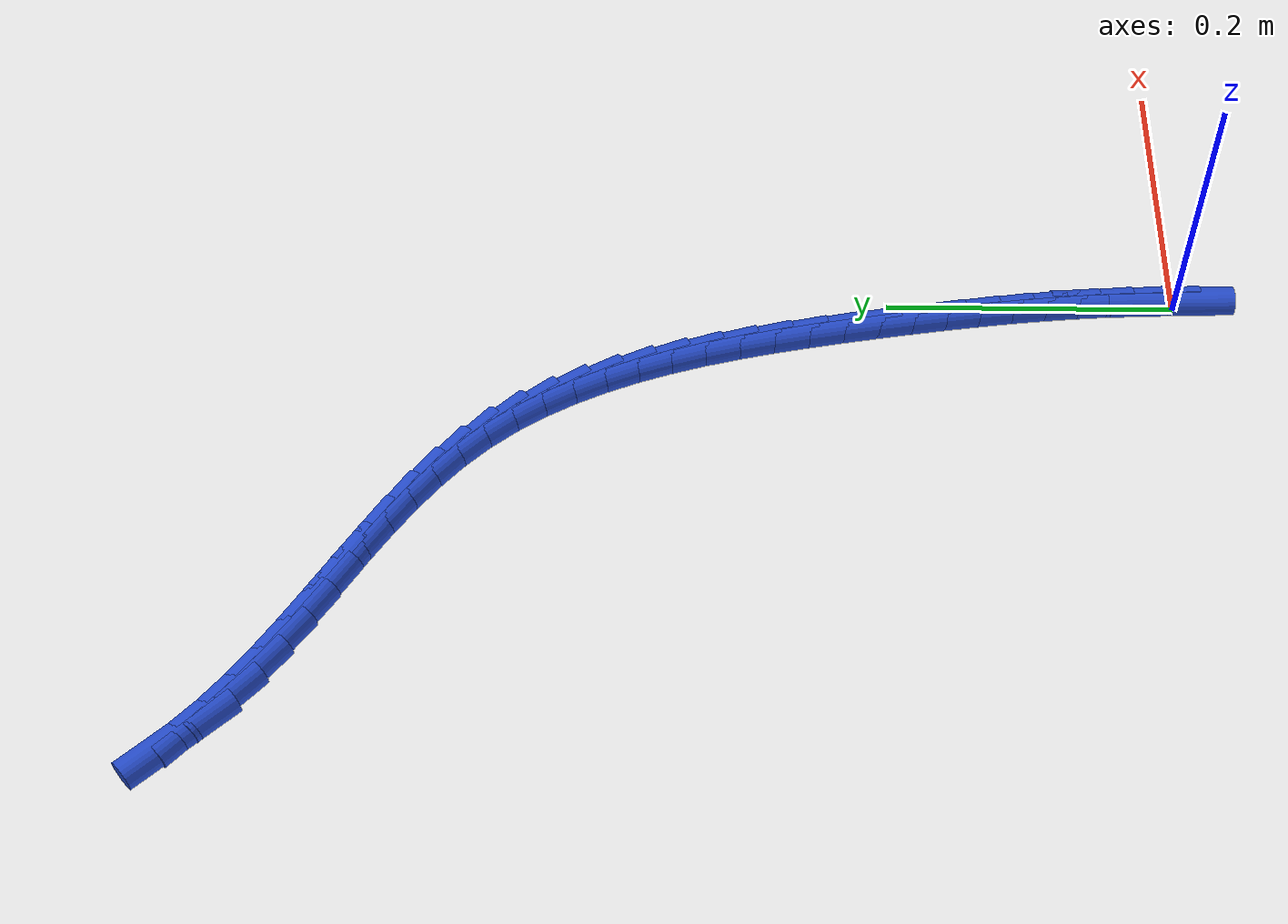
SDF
<sdf version="1.6">
 <world name="default">
  <model name="ground_plane">
   <static>1</static>
   <link name="link">
    <collision name="collision">
     <geometry><plane><normal>0 0 1</normal><size>100 100</size></plane></geometry>
     <surface><friction><ode><mu>100</mu><mu2>50</mu2></ode></friction></surface>
    </collision>
    <visual name="visual">
     <cast_shadows>0</cast_shadows>
     <geometry><plane><normal>0 0 1</normal><size>100 100</size></plane></geometry>
     <material>
      <script><uri>file://media/materials/scripts/gazebo.material</uri><name>Gazebo/WhiteGlow</name></script>
     </material>
    </visual>
   </link>
  </model>
  <model name="line">
   <link name="link_0">
    <pose>-9.974659986866641e-18 0.0 0.01 0 1.57 -1.5426376400969413</pose>
    <collision name="collision">
     <geometry><cylinder><radius>0.01</radius><length>0.08</length></cylinder></geometry>
    </collision>
    <visual name="visual">
     <material>
      <script><name>Gazebo/Blue</name><uri>file://media/materials/scripts/gazebo.material</uri></script>
     </material>
     <geometry><cylinder><radius>0.01</radius><length>0.08</length></cylinder></geometry>
    </visual>
   </link>
   <link name="link_1">
    <pose>-0.0006535011654072775 0.02320166563133421 0.01 0 1.57 -1.5184669543189968</pose>
    <collision name="collision">
     <geometry><cylinder><radius>0.01</radius><length>0.08</length></cylinder></geometry>
    </collision>
    <visual name="visual">
     <material>
      <script><name>Gazebo/Blue</name><uri>file://media/materials/scripts/gazebo.material</uri></script>
     </material>
     <geometry><cylinder><radius>0.01</radius><length>0.08</length></cylinder></geometry>
    </visual>
   </link>
   <link name="link_2">
    <pose>-0.0018649368852563999 0.046330735921835814 0.01 0 1.57 -1.4961589771857828</pose>
    <collision name="collision">
     <geometry><cylinder><radius>0.01</radius><length>0.08</length></cylinder></geometry>
    </collision>
    <visual name="visual">
     <material>
      <script><name>Gazebo/Blue</name><uri>file://media/materials/scripts/gazebo.material</uri></script>
     </material>
     <geometry><cylinder><radius>0.01</radius><length>0.08</length></cylinder></geometry>
    </visual>
   </link>
   <link name="link_3">
    <pose>-0.0035916415821143303 0.06942235395193948 0.01 0 1.57 -1.4758306153682874</pose>
    <collision name="collision">
     <geometry><cylinder><radius>0.01</radius><length>0.08</length></cylinder></geometry>
    </collision>
    <visual name="visual">
     <material>
      <script><name>Gazebo/Blue</name><uri>file://media/materials/scripts/gazebo.material</uri></script>
     </material>
     <geometry><cylinder><radius>0.01</radius><length>0.08</length></cylinder></geometry>
    </visual>
   </link>
   <link name="link_4">
    <pose>-0.005790949678548022 0.09251166280207991 0.01 0 1.57 -1.4575714925606467</pose>
    <collision name="collision">
     <geometry><cylinder><radius>0.01</radius><length>0.08</length></cylinder></geometry>
    </collision>
    <visual name="visual">
     <material>
      <script><name>Gazebo/Blue</name><uri>file://media/materials/scripts/gazebo.material</uri></script>
     </material>
     <geometry><cylinder><radius>0.01</radius><length>0.08</length></cylinder></geometry>
    </visual>
   </link>
   <link name="link_5">
    <pose>-0.008420195597124423 0.11563380555269182 0.01 0 1.57 -1.4414448840320986</pose>
    <collision name="collision">
     <geometry><cylinder><radius>0.01</radius><length>0.08</length></cylinder></geometry>
    </collision>
    <visual name="visual">
     <material>
      <script><name>Gazebo/Blue</name><uri>file://media/materials/scripts/gazebo.material</uri></script>
     </material>
     <geometry><cylinder><radius>0.01</radius><length>0.08</length></cylinder></geometry>
    </visual>
   </link>
   <link name="link_6">
    <pose>-0.011436713760410486 0.13882392528420975 0.01 0 1.57 -1.427489329861225</pose>
    <collision name="collision">
     <geometry><cylinder><radius>0.01</radius><length>0.08</length></cylinder></geometry>
    </collision>
    <visual name="visual">
     <material>
      <script><name>Gazebo/Blue</name><uri>file://media/materials/scripts/gazebo.material</uri></script>
     </material>
     <geometry><cylinder><radius>0.01</radius><length>0.08</length></cylinder></geometry>
    </visual>
   </link>
   <link name="link_7">
    <pose>-0.01479783859097316 0.16211716507706855 0.01 0 1.57 -1.4157206980959294</pose>
    <collision name="collision">
     <geometry><cylinder><radius>0.01</radius><length>0.08</length></cylinder></geometry>
    </collision>
    <visual name="visual">
     <material>
      <script><name>Gazebo/Blue</name><uri>file://media/materials/scripts/gazebo.material</uri></script>
     </material>
     <geometry><cylinder><radius>0.01</radius><length>0.08</length></cylinder></geometry>
    </visual>
   </link>
   <link name="link_8">
    <pose>-0.018460904511379397 0.18554866801170278 0.01 0 1.57 -1.4061344901895956</pose>
    <collision name="collision">
     <geometry><cylinder><radius>0.01</radius><length>0.08</length></cylinder></geometry>
    </collision>
    <visual name="visual">
     <material>
      <script><name>Gazebo/Blue</name><uri>file://media/materials/scripts/gazebo.material</uri></script>
     </material>
     <geometry><cylinder><radius>0.01</radius><length>0.08</length></cylinder></geometry>
    </visual>
   </link>
   <link name="link_9">
    <pose>-0.02238324594419616 0.20915357716854716 0.01 0 1.57 -1.3981448148507345</pose>
    <collision name="collision">
     <geometry><cylinder><radius>0.01</radius><length>0.08</length></cylinder></geometry>
    </collision>
    <visual name="visual">
     <material>
      <script><name>Gazebo/Blue</name><uri>file://media/materials/scripts/gazebo.material</uri></script>
     </material>
     <geometry><cylinder><radius>0.01</radius><length>0.08</length></cylinder></geometry>
    </visual>
   </link>
   <link name="link_10">
    <pose>-0.026533933366463994 0.23295506724168624 0.01 0 1.57 -1.3869090481068425</pose>
    <collision name="collision">
     <geometry><cylinder><radius>0.01</radius><length>0.08</length></cylinder></geometry>
    </collision>
    <visual name="visual">
     <material>
      <script><name>Gazebo/Blue</name><uri>file://media/materials/scripts/gazebo.material</uri></script>
     </material>
     <geometry><cylinder><radius>0.01</radius><length>0.08</length></cylinder></geometry>
    </visual>
   </link>
   <link name="link_11">
    <pose>-0.030982543184908742 0.2568738173378114 0.01 0 1.57 -1.3699339599801506</pose>
    <collision name="collision">
     <geometry><cylinder><radius>0.01</radius><length>0.08</length></cylinder></geometry>
    </collision>
    <visual name="visual">
     <material>
      <script><name>Gazebo/Blue</name><uri>file://media/materials/scripts/gazebo.material</uri></script>
     </material>
     <geometry><cylinder><radius>0.01</radius><length>0.08</length></cylinder></geometry>
    </visual>
   </link>
   <link name="link_12">
    <pose>-0.03584971413699516 0.28077843338147307 0.01 0 1.57 -1.3470366569464325</pose>
    <collision name="collision">
     <geometry><cylinder><radius>0.01</radius><length>0.08</length></cylinder></geometry>
    </collision>
    <visual name="visual">
     <material>
      <script><name>Gazebo/Blue</name><uri>file://media/materials/scripts/gazebo.material</uri></script>
     </material>
     <geometry><cylinder><radius>0.01</radius><length>0.08</length></cylinder></geometry>
    </visual>
   </link>
   <link name="link_13">
    <pose>-0.04125648687033959 0.3045371114306874 0.01 0 1.57 -1.3179298845713576</pose>
    <collision name="collision">
     <geometry><cylinder><radius>0.01</radius><length>0.08</length></cylinder></geometry>
    </collision>
    <visual name="visual">
     <material>
      <script><name>Gazebo/Blue</name><uri>file://media/materials/scripts/gazebo.material</uri></script>
     </material>
     <geometry><cylinder><radius>0.01</radius><length>0.08</length></cylinder></geometry>
    </visual>
   </link>
   <link name="link_14">
    <pose>-0.04732390203255834 0.3280180475434704 0.01 0 1.57 -1.282217757556199</pose>
    <collision name="collision">
     <geometry><cylinder><radius>0.01</radius><length>0.08</length></cylinder></geometry>
    </collision>
    <visual name="visual">
     <material>
      <script><name>Gazebo/Blue</name><uri>file://media/materials/scripts/gazebo.material</uri></script>
     </material>
     <geometry><cylinder><radius>0.01</radius><length>0.08</length></cylinder></geometry>
    </visual>
   </link>
   <link name="link_15">
    <pose>-0.05417300027126774 0.35108943777783846 0.01 0 1.57 -1.239417628663699</pose>
    <collision name="collision">
     <geometry><cylinder><radius>0.01</radius><length>0.08</length></cylinder></geometry>
    </collision>
    <visual name="visual">
     <material>
      <script><name>Gazebo/Blue</name><uri>file://media/materials/scripts/gazebo.material</uri></script>
     </material>
     <geometry><cylinder><radius>0.01</radius><length>0.08</length></cylinder></geometry>
    </visual>
   </link>
   <link name="link_16">
    <pose>-0.061924822234084145 0.3736194781918077 0.01 0 1.57 -1.188995689473306</pose>
    <collision name="collision">
     <geometry><cylinder><radius>0.01</radius><length>0.08</length></cylinder></geometry>
    </collision>
    <visual name="visual">
     <material>
      <script><name>Gazebo/Blue</name><uri>file://media/materials/scripts/gazebo.material</uri></script>
     </material>
     <geometry><cylinder><radius>0.01</radius><length>0.08</length></cylinder></geometry>
    </visual>
   </link>
   <link name="link_17">
    <pose>-0.07070040856862389 0.3954763648433943 0.01 0 1.57 -1.1304249307770082</pose>
    <collision name="collision">
     <geometry><cylinder><radius>0.01</radius><length>0.08</length></cylinder></geometry>
    </collision>
    <visual name="visual">
     <material>
      <script><name>Gazebo/Blue</name><uri>file://media/materials/scripts/gazebo.material</uri></script>
     </material>
     <geometry><cylinder><radius>0.01</radius><length>0.08</length></cylinder></geometry>
    </visual>
   </link>
   <link name="link_18">
    <pose>-0.08062079992250326 0.4165282937906145 0.01 0 1.57 -1.0632745719719394</pose>
    <collision name="collision">
     <geometry><cylinder><radius>0.01</radius><length>0.08</length></cylinder></geometry>
    </collision>
    <visual name="visual">
     <material>
      <script><name>Gazebo/Blue</name><uri>file://media/materials/scripts/gazebo.material</uri></script>
     </material>
     <geometry><cylinder><radius>0.01</radius><length>0.08</length></cylinder></geometry>
    </visual>
   </link>
   <link name="link_19">
    <pose>-0.0918070369433386 0.43664346109148444 0.01 0 1.57 -0.9873367878217699</pose>
    <collision name="collision">
     <geometry><cylinder><radius>0.01</radius><length>0.08</length></cylinder></geometry>
    </collision>
    <visual name="visual">
     <material>
      <script><name>Gazebo/Blue</name><uri>file://media/materials/scripts/gazebo.material</uri></script>
     </material>
     <geometry><cylinder><radius>0.01</radius><length>0.08</length></cylinder></geometry>
    </visual>
   </link>
   <link name="link_20">
    <pose>-0.1043801602787463 0.4556900628040203 0.01 0 1.57 -0.9027858988831038</pose>
    <collision name="collision">
     <geometry><cylinder><radius>0.01</radius><length>0.08</length></cylinder></geometry>
    </collision>
    <visual name="visual">
     <material>
      <script><name>Gazebo/Blue</name><uri>file://media/materials/scripts/gazebo.material</uri></script>
     </material>
     <geometry><cylinder><radius>0.01</radius><length>0.08</length></cylinder></geometry>
    </visual>
   </link>
   <link name="link_21">
    <pose>-0.11846121057634267 0.4735362949862384 0.01 0 1.57 -0.8119439673539637</pose>
    <collision name="collision">
     <geometry><cylinder><radius>0.01</radius><length>0.08</length></cylinder></geometry>
    </collision>
    <visual name="visual">
     <material>
      <script><name>Gazebo/Blue</name><uri>file://media/materials/scripts/gazebo.material</uri></script>
     </material>
     <geometry><cylinder><radius>0.01</radius><length>0.08</length></cylinder></geometry>
    </visual>
   </link>
   <link name="link_22">
    <pose>-0.13414415011568492 0.49007477909193486 0.01 0 1.57 -0.7300866755986011</pose>
    <collision name="collision">
     <geometry><cylinder><radius>0.01</radius><length>0.08</length></cylinder></geometry>
    </collision>
    <visual name="visual">
     <material>
      <script><name>Gazebo/Blue</name><uri>file://media/materials/scripts/gazebo.material</uri></script>
     </material>
     <geometry><cylinder><radius>0.01</radius><length>0.08</length></cylinder></geometry>
    </visual>
   </link>
   <link name="link_23">
    <pose>-0.15128258714375062 0.5054149421948155 0.01 0 1.57 -0.6649232722668154</pose>
    <collision name="collision">
     <geometry><cylinder><radius>0.01</radius><length>0.08</length></cylinder></geometry>
    </collision>
    <visual name="visual">
     <material>
      <script><name>Gazebo/Blue</name><uri>file://media/materials/scripts/gazebo.material</uri></script>
     </material>
     <geometry><cylinder><radius>0.01</radius><length>0.08</length></cylinder></geometry>
    </visual>
   </link>
   <link name="link_24">
    <pose>-0.16960436447008062 0.5197796550804886 0.01 0 1.57 -0.6159699788188291</pose>
    <collision name="collision">
     <geometry><cylinder><radius>0.01</radius><length>0.08</length></cylinder></geometry>
    </collision>
    <visual name="visual">
     <material>
      <script><name>Gazebo/Blue</name><uri>file://media/materials/scripts/gazebo.material</uri></script>
     </material>
     <geometry><cylinder><radius>0.01</radius><length>0.08</length></cylinder></geometry>
    </visual>
   </link>
   <link name="link_25">
    <pose>-0.18883622405849584 0.5333927815261756 0.01 0 1.57 -0.5823932674288169</pose>
    <collision name="collision">
     <geometry><cylinder><radius>0.01</radius><length>0.08</length></cylinder></geometry>
    </collision>
    <visual name="visual">
     <material>
      <script><name>Gazebo/Blue</name><uri>file://media/materials/scripts/gazebo.material</uri></script>
     </material>
     <geometry><cylinder><radius>0.01</radius><length>0.08</length></cylinder></geometry>
    </visual>
   </link>
   <link name="link_26">
    <pose>-0.20870490787281715 0.5464781853090988 0.01 0 1.57 -0.5634322042427602</pose>
    <collision name="collision">
     <geometry><cylinder><radius>0.01</radius><length>0.08</length></cylinder></geometry>
    </collision>
    <visual name="visual">
     <material>
      <script><name>Gazebo/Blue</name><uri>file://media/materials/scripts/gazebo.material</uri></script>
     </material>
     <geometry><cylinder><radius>0.01</radius><length>0.08</length></cylinder></geometry>
    </visual>
   </link>
   <link name="link_27">
    <pose>-0.22893715787686544 0.5592597302064798 0.01 0 1.57 -0.5585975794039176</pose>
    <collision name="collision">
     <geometry><cylinder><radius>0.01</radius><length>0.08</length></cylinder></geometry>
    </collision>
    <visual name="visual">
     <material>
      <script><name>Gazebo/Blue</name><uri>file://media/materials/scripts/gazebo.material</uri></script>
     </material>
     <geometry><cylinder><radius>0.01</radius><length>0.08</length></cylinder></geometry>
    </visual>
   </link>
   <link name="link_28">
    <pose>-0.24925971603446193 0.5719612799955408 0.01 0 1.57 -0.5677641870239503</pose>
    <collision name="collision">
     <geometry><cylinder><radius>0.01</radius><length>0.08</length></cylinder></geometry>
    </collision>
    <visual name="visual">
     <material>
      <script><name>Gazebo/Blue</name><uri>file://media/materials/scripts/gazebo.material</uri></script>
     </material>
     <geometry><cylinder><radius>0.01</radius><length>0.08</length></cylinder></geometry>
    </visual>
   </link>
   <link name="link_29">
    <pose>-0.2693993243094273 0.5848066984535039 0.01 0 1.57 -0.5911923816275992</pose>
    <collision name="collision">
     <geometry><cylinder><radius>0.01</radius><length>0.08</length></cylinder></geometry>
    </collision>
    <visual name="visual">
     <material>
      <script><name>Gazebo/Blue</name><uri>file://media/materials/scripts/gazebo.material</uri></script>
     </material>
     <geometry><cylinder><radius>0.01</radius><length>0.08</length></cylinder></geometry>
    </visual>
   </link>
   <link name="link_30">
    <pose>-0.28908272466558255 0.5980198493575908 0.01 0 1.57 -0.6294884203891968</pose>
    <collision name="collision">
     <geometry><cylinder><radius>0.01</radius><length>0.08</length></cylinder></geometry>
    </collision>
    <visual name="visual">
     <material>
      <script><name>Gazebo/Blue</name><uri>file://media/materials/scripts/gazebo.material</uri></script>
     </material>
     <geometry><cylinder><radius>0.01</radius><length>0.08</length></cylinder></geometry>
    </visual>
   </link>
   <link name="link_31">
    <pose>-0.30803665906674865 0.6118245964850233 0.01 0 1.57 -0.6834847916722526</pose>
    <collision name="collision">
     <geometry><cylinder><radius>0.01</radius><length>0.08</length></cylinder></geometry>
    </collision>
    <visual name="visual">
     <material>
      <script><name>Gazebo/Blue</name><uri>file://media/materials/scripts/gazebo.material</uri></script>
     </material>
     <geometry><cylinder><radius>0.01</radius><length>0.08</length></cylinder></geometry>
    </visual>
   </link>
   <link name="link_32">
    <pose>-0.32598786947674646 0.6264448036130235 0.01 0 1.57 -0.7539965500688934</pose>
    <collision name="collision">
     <geometry><cylinder><radius>0.01</radius><length>0.08</length></cylinder></geometry>
    </collision>
    <visual name="visual">
     <material>
      <script><name>Gazebo/Blue</name><uri>file://media/materials/scripts/gazebo.material</uri></script>
     </material>
     <geometry><cylinder><radius>0.01</radius><length>0.08</length></cylinder></geometry>
    </visual>
   </link>
   <link name="link_33">
    <pose>-0.34266309785939714 0.6421043345188135 0.01 0 1.57 -0.838173663380497</pose>
    <collision name="collision">
     <geometry><cylinder><radius>0.01</radius><length>0.08</length></cylinder></geometry>
    </collision>
    <visual name="visual">
     <material>
      <script><name>Gazebo/Blue</name><uri>file://media/materials/scripts/gazebo.material</uri></script>
     </material>
     <geometry><cylinder><radius>0.01</radius><length>0.08</length></cylinder></geometry>
    </visual>
   </link>
   <link name="link_291">
    <pose>-0.0006592919630155139 0.02319001210509235 0.01 0 1.57 -1.5165283031923436</pose>
    <collision name="collision">
     <geometry><cylinder><radius>0.01</radius><length>0.08</length></cylinder></geometry>
    </collision>
    <visual name="visual">
     <material>
      <script><name>Gazebo/Blue</name><uri>file://media/materials/scripts/gazebo.material</uri></script>
     </material>
     <geometry><cylinder><radius>0.01</radius><length>0.08</length></cylinder></geometry>
    </visual>
   </link>
   <link name="link_292">
    <pose>-0.0019112632661225596 0.046237507711906906 0.01 0 1.57 -1.5294840693317637</pose>
    <collision name="collision">
     <geometry><cylinder><radius>0.01</radius><length>0.08</length></cylinder></geometry>
    </collision>
    <visual name="visual">
     <material>
      <script><name>Gazebo/Blue</name><uri>file://media/materials/scripts/gazebo.material</uri></script>
     </material>
     <geometry><cylinder><radius>0.01</radius><length>0.08</length></cylinder></geometry>
    </visual>
   </link>
  </model>
 </world>
</sdf>
